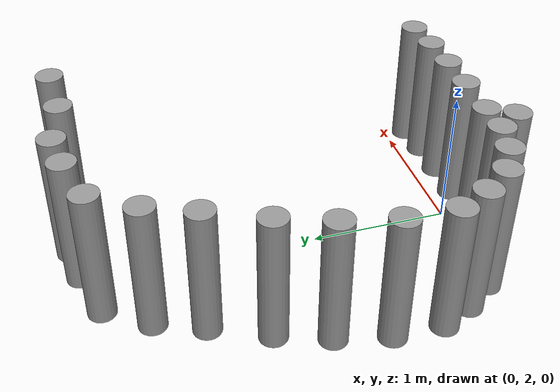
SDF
<sdf version="1.6">
 <world name="default">
  <model name="small_cylinder_0">
   <link name="link">
    <inertial>
     <mass>1</mass>
     <inertia><ixx>0.145833</ixx><ixy>0</ixy><ixz>0</ixz><iyy>0.145833</iyy><iyz>0</iyz><izz>0.125</izz></inertia>
    </inertial>
    <visual name="visual">
     <geometry><cylinder><radius>0.1</radius><length>1</length></cylinder></geometry>
     <material>
      <script><name>Gazebo/Grey</name><uri>file://media/materials/scripts/gazebo.material</uri></script>
      <ambient>0.3 0.3 0.3 1</ambient>
      <diffuse>0.7 0.7 0.7 1</diffuse>
      <specular>0.01 0.01 0.01 1</specular>
      <emissive>0 0 0 1</emissive>
      <shader type="vertex"><normal_map>__default__</normal_map></shader>
     </material>
    </visual>
    <collision name="collision">
     <geometry><cylinder><radius>0.1</radius><length>1</length></cylinder></geometry>
     <surface>
      <friction>
       <ode><mu>1</mu><mu2>1</mu2><fdir1>0 0 0</fdir1><slip1>0</slip1><slip2>0</slip2></ode>
       <torsional>
        <coefficient>1</coefficient>
        <patch_radius>0</patch_radius>
        <surface_radius>0</surface_radius>
        <use_patch_radius>1</use_patch_radius>
        <ode><slip>0</slip></ode>
       </torsional>
      </friction>
      <bounce><restitution_coefficient>0</restitution_coefficient><threshold>1e+06</threshold></bounce>
      <contact>
       <collide_without_contact>0</collide_without_contact>
       <collide_without_contact_bitmask>1</collide_without_contact_bitmask>
       <collide_bitmask>1</collide_bitmask>
       <ode>
        <soft_cfm>0</soft_cfm>
        <soft_erp>0.2</soft_erp>
        <kp>1e+13</kp>
        <kd>1</kd>
        <max_vel>0.01</max_vel>
        <min_depth>0</min_depth>
       </ode>
       <bullet>
        <split_impulse>1</split_impulse>
        <split_impulse_penetration_threshold>-0.01</split_impulse_penetration_threshold>
        <soft_cfm>0</soft_cfm>
        <soft_erp>0.2</soft_erp>
        <kp>1e+13</kp>
        <kd>1</kd>
       </bullet>
      </contact>
     </surface>
    </collision>
   </link>
   <static>1</static>
   <pose>0.821332 1.81475 0.499121 0 6e-06 -0.010888</pose>
  </model>
  <model name="small_cylinder_0_clone_19">
   <link name="link">
    <inertial>
     <mass>1</mass>
     <inertia><ixx>0.145833</ixx><ixy>0</ixy><ixz>0</ixz><iyy>0.145833</iyy><iyz>0</iyz><izz>0.125</izz></inertia>
    </inertial>
    <visual name="visual">
     <geometry><cylinder><radius>0.1</radius><length>1</length></cylinder></geometry>
     <material>
      <script><name>Gazebo/Grey</name><uri>file://media/materials/scripts/gazebo.material</uri></script>
      <ambient>0.3 0.3 0.3 1</ambient>
      <diffuse>0.7 0.7 0.7 1</diffuse>
      <specular>0.01 0.01 0.01 1</specular>
      <emissive>0 0 0 1</emissive>
      <shader type="vertex"><normal_map>__default__</normal_map></shader>
     </material>
    </visual>
    <collision name="collision">
     <geometry><cylinder><radius>0.1</radius><length>1</length></cylinder></geometry>
     <surface>
      <friction>
       <ode><mu>1</mu><mu2>1</mu2><fdir1>0 0 0</fdir1><slip1>0</slip1><slip2>0</slip2></ode>
       <torsional>
        <coefficient>1</coefficient>
        <patch_radius>0</patch_radius>
        <surface_radius>0</surface_radius>
        <use_patch_radius>1</use_patch_radius>
        <ode><slip>0</slip></ode>
       </torsional>
      </friction>
      <bounce><restitution_coefficient>0</restitution_coefficient><threshold>1e+06</threshold></bounce>
      <contact>
       <collide_without_contact>0</collide_without_contact>
       <collide_without_contact_bitmask>1</collide_without_contact_bitmask>
       <collide_bitmask>1</collide_bitmask>
       <ode>
        <soft_cfm>0</soft_cfm>
        <soft_erp>0.2</soft_erp>
        <kp>1e+13</kp>
        <kd>1</kd>
        <max_vel>0.01</max_vel>
        <min_depth>0</min_depth>
       </ode>
       <bullet>
        <split_impulse>1</split_impulse>
        <split_impulse_penetration_threshold>-0.01</split_impulse_penetration_threshold>
        <soft_cfm>0</soft_cfm>
        <soft_erp>0.2</soft_erp>
        <kp>1e+13</kp>
        <kd>1</kd>
       </bullet>
      </contact>
     </surface>
    </collision>
   </link>
   <static>1</static>
   <pose>-0.784231 2.03076 0.499121 0 6e-06 -0.010826</pose>
  </model>
  <model name="small_cylinder_0_clone_20">
   <link name="link">
    <inertial>
     <mass>1</mass>
     <inertia><ixx>0.145833</ixx><ixy>0</ixy><ixz>0</ixz><iyy>0.145833</iyy><iyz>0</iyz><izz>0.125</izz></inertia>
    </inertial>
    <visual name="visual">
     <geometry><cylinder><radius>0.1</radius><length>1</length></cylinder></geometry>
     <material>
      <script><name>Gazebo/Grey</name><uri>file://media/materials/scripts/gazebo.material</uri></script>
      <ambient>0.3 0.3 0.3 1</ambient>
      <diffuse>0.7 0.7 0.7 1</diffuse>
      <specular>0.01 0.01 0.01 1</specular>
      <emissive>0 0 0 1</emissive>
      <shader type="vertex"><normal_map>__default__</normal_map></shader>
     </material>
    </visual>
    <collision name="collision">
     <geometry><cylinder><radius>0.1</radius><length>1</length></cylinder></geometry>
     <surface>
      <friction>
       <ode><mu>1</mu><mu2>1</mu2><fdir1>0 0 0</fdir1><slip1>0</slip1><slip2>0</slip2></ode>
       <torsional>
        <coefficient>1</coefficient>
        <patch_radius>0</patch_radius>
        <surface_radius>0</surface_radius>
        <use_patch_radius>1</use_patch_radius>
        <ode><slip>0</slip></ode>
       </torsional>
      </friction>
      <bounce><restitution_coefficient>0</restitution_coefficient><threshold>1e+06</threshold></bounce>
      <contact>
       <collide_without_contact>0</collide_without_contact>
       <collide_without_contact_bitmask>1</collide_without_contact_bitmask>
       <collide_bitmask>1</collide_bitmask>
       <ode>
        <soft_cfm>0</soft_cfm>
        <soft_erp>0.2</soft_erp>
        <kp>1e+13</kp>
        <kd>1</kd>
        <max_vel>0.01</max_vel>
        <min_depth>0</min_depth>
       </ode>
       <bullet>
        <split_impulse>1</split_impulse>
        <split_impulse_penetration_threshold>-0.01</split_impulse_penetration_threshold>
        <soft_cfm>0</soft_cfm>
        <soft_erp>0.2</soft_erp>
        <kp>1e+13</kp>
        <kd>1</kd>
       </bullet>
      </contact>
     </surface>
    </collision>
   </link>
   <static>1</static>
   <pose>-0.93736 2.24189 0.499121 0 6e-06 -0.010825</pose>
  </model>
  <model name="small_cylinder_0_clone_21">
   <link name="link">
    <inertial>
     <mass>1</mass>
     <inertia><ixx>0.145833</ixx><ixy>0</ixy><ixz>0</ixz><iyy>0.145833</iyy><iyz>0</iyz><izz>0.125</izz></inertia>
    </inertial>
    <visual name="visual">
     <geometry><cylinder><radius>0.1</radius><length>1</length></cylinder></geometry>
     <material>
      <script><name>Gazebo/Grey</name><uri>file://media/materials/scripts/gazebo.material</uri></script>
      <ambient>0.3 0.3 0.3 1</ambient>
      <diffuse>0.7 0.7 0.7 1</diffuse>
      <specular>0.01 0.01 0.01 1</specular>
      <emissive>0 0 0 1</emissive>
      <shader type="vertex"><normal_map>__default__</normal_map></shader>
     </material>
    </visual>
    <collision name="collision">
     <geometry><cylinder><radius>0.1</radius><length>1</length></cylinder></geometry>
     <surface>
      <friction>
       <ode><mu>1</mu><mu2>1</mu2><fdir1>0 0 0</fdir1><slip1>0</slip1><slip2>0</slip2></ode>
       <torsional>
        <coefficient>1</coefficient>
        <patch_radius>0</patch_radius>
        <surface_radius>0</surface_radius>
        <use_patch_radius>1</use_patch_radius>
        <ode><slip>0</slip></ode>
       </torsional>
      </friction>
      <bounce><restitution_coefficient>0</restitution_coefficient><threshold>1e+06</threshold></bounce>
      <contact>
       <collide_without_contact>0</collide_without_contact>
       <collide_without_contact_bitmask>1</collide_without_contact_bitmask>
       <collide_bitmask>1</collide_bitmask>
       <ode>
        <soft_cfm>0</soft_cfm>
        <soft_erp>0.2</soft_erp>
        <kp>1e+13</kp>
        <kd>1</kd>
        <max_vel>0.01</max_vel>
        <min_depth>0</min_depth>
       </ode>
       <bullet>
        <split_impulse>1</split_impulse>
        <split_impulse_penetration_threshold>-0.01</split_impulse_penetration_threshold>
        <soft_cfm>0</soft_cfm>
        <soft_erp>0.2</soft_erp>
        <kp>1e+13</kp>
        <kd>1</kd>
       </bullet>
      </contact>
     </surface>
    </collision>
   </link>
   <static>1</static>
   <pose>-1.0478 2.46962 0.499121 0 6e-06 -0.01085</pose>
  </model>
  <model name="small_cylinder_0_clone_22">
   <link name="link">
    <inertial>
     <mass>1</mass>
     <inertia><ixx>0.145833</ixx><ixy>0</ixy><ixz>0</ixz><iyy>0.145833</iyy><iyz>0</iyz><izz>0.125</izz></inertia>
    </inertial>
    <visual name="visual">
     <geometry><cylinder><radius>0.1</radius><length>1</length></cylinder></geometry>
     <material>
      <script><name>Gazebo/Grey</name><uri>file://media/materials/scripts/gazebo.material</uri></script>
      <ambient>0.3 0.3 0.3 1</ambient>
      <diffuse>0.7 0.7 0.7 1</diffuse>
      <specular>0.01 0.01 0.01 1</specular>
      <emissive>0 0 0 1</emissive>
      <shader type="vertex"><normal_map>__default__</normal_map></shader>
     </material>
    </visual>
    <collision name="collision">
     <geometry><cylinder><radius>0.1</radius><length>1</length></cylinder></geometry>
     <surface>
      <friction>
       <ode><mu>1</mu><mu2>1</mu2><fdir1>0 0 0</fdir1><slip1>0</slip1><slip2>0</slip2></ode>
       <torsional>
        <coefficient>1</coefficient>
        <patch_radius>0</patch_radius>
        <surface_radius>0</surface_radius>
        <use_patch_radius>1</use_patch_radius>
        <ode><slip>0</slip></ode>
       </torsional>
      </friction>
      <bounce><restitution_coefficient>0</restitution_coefficient><threshold>1e+06</threshold></bounce>
      <contact>
       <collide_without_contact>0</collide_without_contact>
       <collide_without_contact_bitmask>1</collide_without_contact_bitmask>
       <collide_bitmask>1</collide_bitmask>
       <ode>
        <soft_cfm>0</soft_cfm>
        <soft_erp>0.2</soft_erp>
        <kp>1e+13</kp>
        <kd>1</kd>
        <max_vel>0.01</max_vel>
        <min_depth>0</min_depth>
       </ode>
       <bullet>
        <split_impulse>1</split_impulse>
        <split_impulse_penetration_threshold>-0.01</split_impulse_penetration_threshold>
        <soft_cfm>0</soft_cfm>
        <soft_erp>0.2</soft_erp>
        <kp>1e+13</kp>
        <kd>1</kd>
       </bullet>
      </contact>
     </surface>
    </collision>
   </link>
   <static>1</static>
   <pose>-0.283826 4.5809 0.499121 0 6e-06 -0.010595</pose>
  </model>
  <model name="small_cylinder_0_clone_23">
   <link name="link">
    <inertial>
     <mass>1</mass>
     <inertia><ixx>0.145833</ixx><ixy>0</ixy><ixz>0</ixz><iyy>0.145833</iyy><iyz>0</iyz><izz>0.125</izz></inertia>
    </inertial>
    <visual name="visual">
     <geometry><cylinder><radius>0.1</radius><length>1</length></cylinder></geometry>
     <material>
      <script><name>Gazebo/Grey</name><uri>file://media/materials/scripts/gazebo.material</uri></script>
      <ambient>0.3 0.3 0.3 1</ambient>
      <diffuse>0.7 0.7 0.7 1</diffuse>
      <specular>0.01 0.01 0.01 1</specular>
      <emissive>0 0 0 1</emissive>
      <shader type="vertex"><normal_map>__default__</normal_map></shader>
     </material>
    </visual>
    <collision name="collision">
     <geometry><cylinder><radius>0.1</radius><length>1</length></cylinder></geometry>
     <surface>
      <friction>
       <ode><mu>1</mu><mu2>1</mu2><fdir1>0 0 0</fdir1><slip1>0</slip1><slip2>0</slip2></ode>
       <torsional>
        <coefficient>1</coefficient>
        <patch_radius>0</patch_radius>
        <surface_radius>0</surface_radius>
        <use_patch_radius>1</use_patch_radius>
        <ode><slip>0</slip></ode>
       </torsional>
      </friction>
      <bounce><restitution_coefficient>0</restitution_coefficient><threshold>1e+06</threshold></bounce>
      <contact>
       <collide_without_contact>0</collide_without_contact>
       <collide_without_contact_bitmask>1</collide_without_contact_bitmask>
       <collide_bitmask>1</collide_bitmask>
       <ode>
        <soft_cfm>0</soft_cfm>
        <soft_erp>0.2</soft_erp>
        <kp>1e+13</kp>
        <kd>1</kd>
        <max_vel>0.01</max_vel>
        <min_depth>0</min_depth>
       </ode>
       <bullet>
        <split_impulse>1</split_impulse>
        <split_impulse_penetration_threshold>-0.01</split_impulse_penetration_threshold>
        <soft_cfm>0</soft_cfm>
        <soft_erp>0.2</soft_erp>
        <kp>1e+13</kp>
        <kd>1</kd>
       </bullet>
      </contact>
     </surface>
    </collision>
   </link>
   <static>1</static>
   <pose>-1.0387 2.8273 0.499121 0 6e-06 -0.010854</pose>
  </model>
  <model name="small_cylinder_0_clone_24">
   <link name="link">
    <inertial>
     <mass>1</mass>
     <inertia><ixx>0.145833</ixx><ixy>0</ixy><ixz>0</ixz><iyy>0.145833</iyy><iyz>0</iyz><izz>0.125</izz></inertia>
    </inertial>
    <visual name="visual">
     <geometry><cylinder><radius>0.1</radius><length>1</length></cylinder></geometry>
     <material>
      <script><name>Gazebo/Grey</name><uri>file://media/materials/scripts/gazebo.material</uri></script>
      <ambient>0.3 0.3 0.3 1</ambient>
      <diffuse>0.7 0.7 0.7 1</diffuse>
      <specular>0.01 0.01 0.01 1</specular>
      <emissive>0 0 0 1</emissive>
      <shader type="vertex"><normal_map>__default__</normal_map></shader>
     </material>
    </visual>
    <collision name="collision">
     <geometry><cylinder><radius>0.1</radius><length>1</length></cylinder></geometry>
     <surface>
      <friction>
       <ode><mu>1</mu><mu2>1</mu2><fdir1>0 0 0</fdir1><slip1>0</slip1><slip2>0</slip2></ode>
       <torsional>
        <coefficient>1</coefficient>
        <patch_radius>0</patch_radius>
        <surface_radius>0</surface_radius>
        <use_patch_radius>1</use_patch_radius>
        <ode><slip>0</slip></ode>
       </torsional>
      </friction>
      <bounce><restitution_coefficient>0</restitution_coefficient><threshold>1e+06</threshold></bounce>
      <contact>
       <collide_without_contact>0</collide_without_contact>
       <collide_without_contact_bitmask>1</collide_without_contact_bitmask>
       <collide_bitmask>1</collide_bitmask>
       <ode>
        <soft_cfm>0</soft_cfm>
        <soft_erp>0.2</soft_erp>
        <kp>1e+13</kp>
        <kd>1</kd>
        <max_vel>0.01</max_vel>
        <min_depth>0</min_depth>
       </ode>
       <bullet>
        <split_impulse>1</split_impulse>
        <split_impulse_penetration_threshold>-0.01</split_impulse_penetration_threshold>
        <soft_cfm>0</soft_cfm>
        <soft_erp>0.2</soft_erp>
        <kp>1e+13</kp>
        <kd>1</kd>
       </bullet>
      </contact>
     </surface>
    </collision>
   </link>
   <static>1</static>
   <pose>-0.946993 3.19906 0.499121 0 6e-06 -0.010902</pose>
  </model>
  <model name="small_cylinder_0_clone_25">
   <link name="link">
    <inertial>
     <mass>1</mass>
     <inertia><ixx>0.145833</ixx><ixy>0</ixy><ixz>0</ixz><iyy>0.145833</iyy><iyz>0</iyz><izz>0.125</izz></inertia>
    </inertial>
    <visual name="visual">
     <geometry><cylinder><radius>0.1</radius><length>1</length></cylinder></geometry>
     <material>
      <script><name>Gazebo/Grey</name><uri>file://media/materials/scripts/gazebo.material</uri></script>
      <ambient>0.3 0.3 0.3 1</ambient>
      <diffuse>0.7 0.7 0.7 1</diffuse>
      <specular>0.01 0.01 0.01 1</specular>
      <emissive>0 0 0 1</emissive>
      <shader type="vertex"><normal_map>__default__</normal_map></shader>
     </material>
    </visual>
    <collision name="collision">
     <geometry><cylinder><radius>0.1</radius><length>1</length></cylinder></geometry>
     <surface>
      <friction>
       <ode><mu>1</mu><mu2>1</mu2><fdir1>0 0 0</fdir1><slip1>0</slip1><slip2>0</slip2></ode>
       <torsional>
        <coefficient>1</coefficient>
        <patch_radius>0</patch_radius>
        <surface_radius>0</surface_radius>
        <use_patch_radius>1</use_patch_radius>
        <ode><slip>0</slip></ode>
       </torsional>
      </friction>
      <bounce><restitution_coefficient>0</restitution_coefficient><threshold>1e+06</threshold></bounce>
      <contact>
       <collide_without_contact>0</collide_without_contact>
       <collide_without_contact_bitmask>1</collide_without_contact_bitmask>
       <collide_bitmask>1</collide_bitmask>
       <ode>
        <soft_cfm>0</soft_cfm>
        <soft_erp>0.2</soft_erp>
        <kp>1e+13</kp>
        <kd>1</kd>
        <max_vel>0.01</max_vel>
        <min_depth>0</min_depth>
       </ode>
       <bullet>
        <split_impulse>1</split_impulse>
        <split_impulse_penetration_threshold>-0.01</split_impulse_penetration_threshold>
        <soft_cfm>0</soft_cfm>
        <soft_erp>0.2</soft_erp>
        <kp>1e+13</kp>
        <kd>1</kd>
       </bullet>
      </contact>
     </surface>
    </collision>
   </link>
   <static>1</static>
   <pose>-0.815008 3.5579 0.499121 0 6e-06 -0.010839</pose>
  </model>
  <model name="small_cylinder_0_clone_26">
   <link name="link">
    <inertial>
     <mass>1</mass>
     <inertia><ixx>0.145833</ixx><ixy>0</ixy><ixz>0</ixz><iyy>0.145833</iyy><iyz>0</iyz><izz>0.125</izz></inertia>
    </inertial>
    <visual name="visual">
     <geometry><cylinder><radius>0.1</radius><length>1</length></cylinder></geometry>
     <material>
      <script><name>Gazebo/Grey</name><uri>file://media/materials/scripts/gazebo.material</uri></script>
      <ambient>0.3 0.3 0.3 1</ambient>
      <diffuse>0.7 0.7 0.7 1</diffuse>
      <specular>0.01 0.01 0.01 1</specular>
      <emissive>0 0 0 1</emissive>
      <shader type="vertex"><normal_map>__default__</normal_map></shader>
     </material>
    </visual>
    <collision name="collision">
     <geometry><cylinder><radius>0.1</radius><length>1</length></cylinder></geometry>
     <surface>
      <friction>
       <ode><mu>1</mu><mu2>1</mu2><fdir1>0 0 0</fdir1><slip1>0</slip1><slip2>0</slip2></ode>
       <torsional>
        <coefficient>1</coefficient>
        <patch_radius>0</patch_radius>
        <surface_radius>0</surface_radius>
        <use_patch_radius>1</use_patch_radius>
        <ode><slip>0</slip></ode>
       </torsional>
      </friction>
      <bounce><restitution_coefficient>0</restitution_coefficient><threshold>1e+06</threshold></bounce>
      <contact>
       <collide_without_contact>0</collide_without_contact>
       <collide_without_contact_bitmask>1</collide_without_contact_bitmask>
       <collide_bitmask>1</collide_bitmask>
       <ode>
        <soft_cfm>0</soft_cfm>
        <soft_erp>0.2</soft_erp>
        <kp>1e+13</kp>
        <kd>1</kd>
        <max_vel>0.01</max_vel>
        <min_depth>0</min_depth>
       </ode>
       <bullet>
        <split_impulse>1</split_impulse>
        <split_impulse_penetration_threshold>-0.01</split_impulse_penetration_threshold>
        <soft_cfm>0</soft_cfm>
        <soft_erp>0.2</soft_erp>
        <kp>1e+13</kp>
        <kd>1</kd>
       </bullet>
      </contact>
     </surface>
    </collision>
   </link>
   <static>1</static>
   <pose>0.361109 4.71101 0.499121 0 6e-06 -0.019556</pose>
  </model>
  <model name="small_cylinder_0_clone_27">
   <link name="link">
    <inertial>
     <mass>1</mass>
     <inertia><ixx>0.145833</ixx><ixy>0</ixy><ixz>0</ixz><iyy>0.145833</iyy><iyz>0</iyz><izz>0.125</izz></inertia>
    </inertial>
    <visual name="visual">
     <geometry><cylinder><radius>0.1</radius><length>1</length></cylinder></geometry>
     <material>
      <script><name>Gazebo/Grey</name><uri>file://media/materials/scripts/gazebo.material</uri></script>
      <ambient>0.3 0.3 0.3 1</ambient>
      <diffuse>0.7 0.7 0.7 1</diffuse>
      <specular>0.01 0.01 0.01 1</specular>
      <emissive>0 0 0 1</emissive>
      <shader type="vertex"><normal_map>__default__</normal_map></shader>
     </material>
    </visual>
    <collision name="collision">
     <geometry><cylinder><radius>0.1</radius><length>1</length></cylinder></geometry>
     <surface>
      <friction>
       <ode><mu>1</mu><mu2>1</mu2><fdir1>0 0 0</fdir1><slip1>0</slip1><slip2>0</slip2></ode>
       <torsional>
        <coefficient>1</coefficient>
        <patch_radius>0</patch_radius>
        <surface_radius>0</surface_radius>
        <use_patch_radius>1</use_patch_radius>
        <ode><slip>0</slip></ode>
       </torsional>
      </friction>
      <bounce><restitution_coefficient>0</restitution_coefficient><threshold>1e+06</threshold></bounce>
      <contact>
       <collide_without_contact>0</collide_without_contact>
       <collide_without_contact_bitmask>1</collide_without_contact_bitmask>
       <collide_bitmask>1</collide_bitmask>
       <ode>
        <soft_cfm>0</soft_cfm>
        <soft_erp>0.2</soft_erp>
        <kp>1e+13</kp>
        <kd>1</kd>
        <max_vel>0.01</max_vel>
        <min_depth>0</min_depth>
       </ode>
       <bullet>
        <split_impulse>1</split_impulse>
        <split_impulse_penetration_threshold>-0.01</split_impulse_penetration_threshold>
        <soft_cfm>0</soft_cfm>
        <soft_erp>0.2</soft_erp>
        <kp>1e+13</kp>
        <kd>1</kd>
       </bullet>
      </contact>
     </surface>
    </collision>
   </link>
   <static>1</static>
   <pose>-0.631874 3.94904 0.499121 0 6e-06 -0.010858</pose>
  </model>
  <model name="small_cylinder_0_clone_28">
   <link name="link">
    <inertial>
     <mass>1</mass>
     <inertia><ixx>0.145833</ixx><ixy>0</ixy><ixz>0</ixz><iyy>0.145833</iyy><iyz>0</iyz><izz>0.125</izz></inertia>
    </inertial>
    <visual name="visual">
     <geometry><cylinder><radius>0.1</radius><length>1</length></cylinder></geometry>
     <material>
      <script><name>Gazebo/Grey</name><uri>file://media/materials/scripts/gazebo.material</uri></script>
      <ambient>0.3 0.3 0.3 1</ambient>
      <diffuse>0.7 0.7 0.7 1</diffuse>
      <specular>0.01 0.01 0.01 1</specular>
      <emissive>0 0 0 1</emissive>
      <shader type="vertex"><normal_map>__default__</normal_map></shader>
     </material>
    </visual>
    <collision name="collision">
     <geometry><cylinder><radius>0.1</radius><length>1</length></cylinder></geometry>
     <surface>
      <friction>
       <ode><mu>1</mu><mu2>1</mu2><fdir1>0 0 0</fdir1><slip1>0</slip1><slip2>0</slip2></ode>
       <torsional>
        <coefficient>1</coefficient>
        <patch_radius>0</patch_radius>
        <surface_radius>0</surface_radius>
        <use_patch_radius>1</use_patch_radius>
        <ode><slip>0</slip></ode>
       </torsional>
      </friction>
      <bounce><restitution_coefficient>0</restitution_coefficient><threshold>1e+06</threshold></bounce>
      <contact>
       <collide_without_contact>0</collide_without_contact>
       <collide_without_contact_bitmask>1</collide_without_contact_bitmask>
       <collide_bitmask>1</collide_bitmask>
       <ode>
        <soft_cfm>0</soft_cfm>
        <soft_erp>0.2</soft_erp>
        <kp>1e+13</kp>
        <kd>1</kd>
        <max_vel>0.01</max_vel>
        <min_depth>0</min_depth>
       </ode>
       <bullet>
        <split_impulse>1</split_impulse>
        <split_impulse_penetration_threshold>-0.01</split_impulse_penetration_threshold>
        <soft_cfm>0</soft_cfm>
        <soft_erp>0.2</soft_erp>
        <kp>1e+13</kp>
        <kd>1</kd>
       </bullet>
      </contact>
     </surface>
    </collision>
   </link>
   <static>1</static>
   <pose>-0.492675 4.28058 0.499121 0 -6e-06 -0.004304</pose>
  </model>
  <model name="small_cylinder_0_clone_29">
   <link name="link">
    <inertial>
     <mass>1</mass>
     <inertia><ixx>0.145833</ixx><ixy>0</ixy><ixz>0</ixz><iyy>0.145833</iyy><iyz>0</iyz><izz>0.125</izz></inertia>
    </inertial>
    <visual name="visual">
     <geometry><cylinder><radius>0.1</radius><length>1</length></cylinder></geometry>
     <material>
      <script><name>Gazebo/Grey</name><uri>file://media/materials/scripts/gazebo.material</uri></script>
      <ambient>0.3 0.3 0.3 1</ambient>
      <diffuse>0.7 0.7 0.7 1</diffuse>
      <specular>0.01 0.01 0.01 1</specular>
      <emissive>0 0 0 1</emissive>
      <shader type="vertex"><normal_map>__default__</normal_map></shader>
     </material>
    </visual>
    <collision name="collision">
     <geometry><cylinder><radius>0.1</radius><length>1</length></cylinder></geometry>
     <surface>
      <friction>
       <ode><mu>1</mu><mu2>1</mu2><fdir1>0 0 0</fdir1><slip1>0</slip1><slip2>0</slip2></ode>
       <torsional>
        <coefficient>1</coefficient>
        <patch_radius>0</patch_radius>
        <surface_radius>0</surface_radius>
        <use_patch_radius>1</use_patch_radius>
        <ode><slip>0</slip></ode>
       </torsional>
      </friction>
      <bounce><restitution_coefficient>0</restitution_coefficient><threshold>1e+06</threshold></bounce>
      <contact>
       <collide_without_contact>0</collide_without_contact>
       <collide_without_contact_bitmask>1</collide_without_contact_bitmask>
       <collide_bitmask>1</collide_bitmask>
       <ode>
        <soft_cfm>0</soft_cfm>
        <soft_erp>0.2</soft_erp>
        <kp>1e+13</kp>
        <kd>1</kd>
        <max_vel>0.01</max_vel>
        <min_depth>0</min_depth>
       </ode>
       <bullet>
        <split_impulse>1</split_impulse>
        <split_impulse_penetration_threshold>-0.01</split_impulse_penetration_threshold>
        <soft_cfm>0</soft_cfm>
        <soft_erp>0.2</soft_erp>
        <kp>1e+13</kp>
        <kd>1</kd>
       </bullet>
      </contact>
     </surface>
    </collision>
   </link>
   <static>1</static>
   <pose>0.081453 4.67514 0.499121 -1e-06 -6e-06 0.081107</pose>
  </model>
  <model name="small_cylinder_0_clone_30">
   <link name="link">
    <inertial>
     <mass>1</mass>
     <inertia><ixx>0.145833</ixx><ixy>0</ixy><ixz>0</ixz><iyy>0.145833</iyy><iyz>0</iyz><izz>0.125</izz></inertia>
    </inertial>
    <visual name="visual">
     <geometry><cylinder><radius>0.1</radius><length>1</length></cylinder></geometry>
     <material>
      <script><name>Gazebo/Grey</name><uri>file://media/materials/scripts/gazebo.material</uri></script>
      <ambient>0.3 0.3 0.3 1</ambient>
      <diffuse>0.7 0.7 0.7 1</diffuse>
      <specular>0.01 0.01 0.01 1</specular>
      <emissive>0 0 0 1</emissive>
      <shader type="vertex"><normal_map>__default__</normal_map></shader>
     </material>
    </visual>
    <collision name="collision">
     <geometry><cylinder><radius>0.1</radius><length>1</length></cylinder></geometry>
     <surface>
      <friction>
       <ode><mu>1</mu><mu2>1</mu2><fdir1>0 0 0</fdir1><slip1>0</slip1><slip2>0</slip2></ode>
       <torsional>
        <coefficient>1</coefficient>
        <patch_radius>0</patch_radius>
        <surface_radius>0</surface_radius>
        <use_patch_radius>1</use_patch_radius>
        <ode><slip>0</slip></ode>
       </torsional>
      </friction>
      <bounce><restitution_coefficient>0</restitution_coefficient><threshold>1e+06</threshold></bounce>
      <contact>
       <collide_without_contact>0</collide_without_contact>
       <collide_without_contact_bitmask>1</collide_without_contact_bitmask>
       <collide_bitmask>1</collide_bitmask>
       <ode>
        <soft_cfm>0</soft_cfm>
        <soft_erp>0.2</soft_erp>
        <kp>1e+13</kp>
        <kd>1</kd>
        <max_vel>0.01</max_vel>
        <min_depth>0</min_depth>
       </ode>
       <bullet>
        <split_impulse>1</split_impulse>
        <split_impulse_penetration_threshold>-0.01</split_impulse_penetration_threshold>
        <soft_cfm>0</soft_cfm>
        <soft_erp>0.2</soft_erp>
        <kp>1e+13</kp>
        <kd>1</kd>
       </bullet>
      </contact>
     </surface>
    </collision>
   </link>
   <static>1</static>
   <pose>1.1615 4.64777 0.499121 0 6e-06 -0.010811</pose>
  </model>
  <model name="small_cylinder_0_clone_31">
   <link name="link">
    <inertial>
     <mass>1</mass>
     <inertia><ixx>0.145833</ixx><ixy>0</ixy><ixz>0</ixz><iyy>0.145833</iyy><iyz>0</iyz><izz>0.125</izz></inertia>
    </inertial>
    <visual name="visual">
     <geometry><cylinder><radius>0.1</radius><length>1</length></cylinder></geometry>
     <material>
      <script><name>Gazebo/Grey</name><uri>file://media/materials/scripts/gazebo.material</uri></script>
      <ambient>0.3 0.3 0.3 1</ambient>
      <diffuse>0.7 0.7 0.7 1</diffuse>
      <specular>0.01 0.01 0.01 1</specular>
      <emissive>0 0 0 1</emissive>
      <shader type="vertex"><normal_map>__default__</normal_map></shader>
     </material>
    </visual>
    <collision name="collision">
     <geometry><cylinder><radius>0.1</radius><length>1</length></cylinder></geometry>
     <surface>
      <friction>
       <ode><mu>1</mu><mu2>1</mu2><fdir1>0 0 0</fdir1><slip1>0</slip1><slip2>0</slip2></ode>
       <torsional>
        <coefficient>1</coefficient>
        <patch_radius>0</patch_radius>
        <surface_radius>0</surface_radius>
        <use_patch_radius>1</use_patch_radius>
        <ode><slip>0</slip></ode>
       </torsional>
      </friction>
      <bounce><restitution_coefficient>0</restitution_coefficient><threshold>1e+06</threshold></bounce>
      <contact>
       <collide_without_contact>0</collide_without_contact>
       <collide_without_contact_bitmask>1</collide_without_contact_bitmask>
       <collide_bitmask>1</collide_bitmask>
       <ode>
        <soft_cfm>0</soft_cfm>
        <soft_erp>0.2</soft_erp>
        <kp>1e+13</kp>
        <kd>1</kd>
        <max_vel>0.01</max_vel>
        <min_depth>0</min_depth>
       </ode>
       <bullet>
        <split_impulse>1</split_impulse>
        <split_impulse_penetration_threshold>-0.01</split_impulse_penetration_threshold>
        <soft_cfm>0</soft_cfm>
        <soft_erp>0.2</soft_erp>
        <kp>1e+13</kp>
        <kd>1</kd>
       </bullet>
      </contact>
     </surface>
    </collision>
   </link>
   <static>1</static>
   <pose>0.741825 4.62907 0.499121 0 6e-06 -0.010852</pose>
  </model>
  <model name="small_cylinder_0_clone_43">
   <link name="link">
    <inertial>
     <mass>1</mass>
     <inertia><ixx>0.145833</ixx><ixy>0</ixy><ixz>0</ixz><iyy>0.145833</iyy><iyz>0</iyz><izz>0.125</izz></inertia>
    </inertial>
    <visual name="visual">
     <geometry><cylinder><radius>0.1</radius><length>1</length></cylinder></geometry>
     <material>
      <script><name>Gazebo/Grey</name><uri>file://media/materials/scripts/gazebo.material</uri></script>
      <ambient>0.3 0.3 0.3 1</ambient>
      <diffuse>0.7 0.7 0.7 1</diffuse>
      <specular>0.01 0.01 0.01 1</specular>
      <emissive>0 0 0 1</emissive>
      <shader type="vertex"><normal_map>__default__</normal_map></shader>
     </material>
    </visual>
    <collision name="collision">
     <geometry><cylinder><radius>0.1</radius><length>1</length></cylinder></geometry>
     <surface>
      <friction>
       <ode><mu>1</mu><mu2>1</mu2><fdir1>0 0 0</fdir1><slip1>0</slip1><slip2>0</slip2></ode>
       <torsional>
        <coefficient>1</coefficient>
        <patch_radius>0</patch_radius>
        <surface_radius>0</surface_radius>
        <use_patch_radius>1</use_patch_radius>
        <ode><slip>0</slip></ode>
       </torsional>
      </friction>
      <bounce><restitution_coefficient>0</restitution_coefficient><threshold>1e+06</threshold></bounce>
      <contact>
       <collide_without_contact>0</collide_without_contact>
       <collide_without_contact_bitmask>1</collide_without_contact_bitmask>
       <collide_bitmask>1</collide_bitmask>
       <ode>
        <soft_cfm>0</soft_cfm>
        <soft_erp>0.2</soft_erp>
        <kp>1e+13</kp>
        <kd>1</kd>
        <max_vel>0.01</max_vel>
        <min_depth>0</min_depth>
       </ode>
       <bullet>
        <split_impulse>1</split_impulse>
        <split_impulse_penetration_threshold>-0.01</split_impulse_penetration_threshold>
        <soft_cfm>0</soft_cfm>
        <soft_erp>0.2</soft_erp>
        <kp>1e+13</kp>
        <kd>1</kd>
       </bullet>
      </contact>
     </surface>
    </collision>
   </link>
   <static>1</static>
   <pose>-0.578217 1.90384 0.499121 0 6e-06 -0.010877</pose>
  </model>
  <model name="small_cylinder_0_clone_44">
   <link name="link">
    <inertial>
     <mass>1</mass>
     <inertia><ixx>0.145833</ixx><ixy>0</ixy><ixz>0</ixz><iyy>0.145833</iyy><iyz>0</iyz><izz>0.125</izz></inertia>
    </inertial>
    <visual name="visual">
     <geometry><cylinder><radius>0.1</radius><length>1</length></cylinder></geometry>
     <material>
      <script><name>Gazebo/Grey</name><uri>file://media/materials/scripts/gazebo.material</uri></script>
      <ambient>0.3 0.3 0.3 1</ambient>
      <diffuse>0.7 0.7 0.7 1</diffuse>
      <specular>0.01 0.01 0.01 1</specular>
      <emissive>0 0 0 1</emissive>
      <shader type="vertex"><normal_map>__default__</normal_map></shader>
     </material>
    </visual>
    <collision name="collision">
     <geometry><cylinder><radius>0.1</radius><length>1</length></cylinder></geometry>
     <surface>
      <friction>
       <ode><mu>1</mu><mu2>1</mu2><fdir1>0 0 0</fdir1><slip1>0</slip1><slip2>0</slip2></ode>
       <torsional>
        <coefficient>1</coefficient>
        <patch_radius>0</patch_radius>
        <surface_radius>0</surface_radius>
        <use_patch_radius>1</use_patch_radius>
        <ode><slip>0</slip></ode>
       </torsional>
      </friction>
      <bounce><restitution_coefficient>0</restitution_coefficient><threshold>1e+06</threshold></bounce>
      <contact>
       <collide_without_contact>0</collide_without_contact>
       <collide_without_contact_bitmask>1</collide_without_contact_bitmask>
       <collide_bitmask>1</collide_bitmask>
       <ode>
        <soft_cfm>0</soft_cfm>
        <soft_erp>0.2</soft_erp>
        <kp>1e+13</kp>
        <kd>1</kd>
        <max_vel>0.01</max_vel>
        <min_depth>0</min_depth>
       </ode>
       <bullet>
        <split_impulse>1</split_impulse>
        <split_impulse_penetration_threshold>-0.01</split_impulse_penetration_threshold>
        <soft_cfm>0</soft_cfm>
        <soft_erp>0.2</soft_erp>
        <kp>1e+13</kp>
        <kd>1</kd>
       </bullet>
      </contact>
     </surface>
    </collision>
   </link>
   <static>1</static>
   <pose>-0.352718 1.84074 0.499121 0 6e-06 -0.010837</pose>
  </model>
  <model name="small_cylinder_0_clone_45">
   <link name="link">
    <inertial>
     <mass>1</mass>
     <inertia><ixx>0.145833</ixx><ixy>0</ixy><ixz>0</ixz><iyy>0.145833</iyy><iyz>0</iyz><izz>0.125</izz></inertia>
    </inertial>
    <visual name="visual">
     <geometry><cylinder><radius>0.1</radius><length>1</length></cylinder></geometry>
     <material>
      <script><name>Gazebo/Grey</name><uri>file://media/materials/scripts/gazebo.material</uri></script>
      <ambient>0.3 0.3 0.3 1</ambient>
      <diffuse>0.7 0.7 0.7 1</diffuse>
      <specular>0.01 0.01 0.01 1</specular>
      <emissive>0 0 0 1</emissive>
      <shader type="vertex"><normal_map>__default__</normal_map></shader>
     </material>
    </visual>
    <collision name="collision">
     <geometry><cylinder><radius>0.1</radius><length>1</length></cylinder></geometry>
     <surface>
      <friction>
       <ode><mu>1</mu><mu2>1</mu2><fdir1>0 0 0</fdir1><slip1>0</slip1><slip2>0</slip2></ode>
       <torsional>
        <coefficient>1</coefficient>
        <patch_radius>0</patch_radius>
        <surface_radius>0</surface_radius>
        <use_patch_radius>1</use_patch_radius>
        <ode><slip>0</slip></ode>
       </torsional>
      </friction>
      <bounce><restitution_coefficient>0</restitution_coefficient><threshold>1e+06</threshold></bounce>
      <contact>
       <collide_without_contact>0</collide_without_contact>
       <collide_without_contact_bitmask>1</collide_without_contact_bitmask>
       <collide_bitmask>1</collide_bitmask>
       <ode>
        <soft_cfm>0</soft_cfm>
        <soft_erp>0.2</soft_erp>
        <kp>1e+13</kp>
        <kd>1</kd>
        <max_vel>0.01</max_vel>
        <min_depth>0</min_depth>
       </ode>
       <bullet>
        <split_impulse>1</split_impulse>
        <split_impulse_penetration_threshold>-0.01</split_impulse_penetration_threshold>
        <soft_cfm>0</soft_cfm>
        <soft_erp>0.2</soft_erp>
        <kp>1e+13</kp>
        <kd>1</kd>
       </bullet>
      </contact>
     </surface>
    </collision>
   </link>
   <static>1</static>
   <pose>-0.121939 1.83538 0.499121 0 6e-06 -0.010851</pose>
  </model>
  <model name="small_cylinder_0_clone_46">
   <link name="link">
    <inertial>
     <mass>1</mass>
     <inertia><ixx>0.145833</ixx><ixy>0</ixy><ixz>0</ixz><iyy>0.145833</iyy><iyz>0</iyz><izz>0.125</izz></inertia>
    </inertial>
    <visual name="visual">
     <geometry><cylinder><radius>0.1</radius><length>1</length></cylinder></geometry>
     <material>
      <script><name>Gazebo/Grey</name><uri>file://media/materials/scripts/gazebo.material</uri></script>
      <ambient>0.3 0.3 0.3 1</ambient>
      <diffuse>0.7 0.7 0.7 1</diffuse>
      <specular>0.01 0.01 0.01 1</specular>
      <emissive>0 0 0 1</emissive>
      <shader type="vertex"><normal_map>__default__</normal_map></shader>
     </material>
    </visual>
    <collision name="collision">
     <geometry><cylinder><radius>0.1</radius><length>1</length></cylinder></geometry>
     <surface>
      <friction>
       <ode><mu>1</mu><mu2>1</mu2><fdir1>0 0 0</fdir1><slip1>0</slip1><slip2>0</slip2></ode>
       <torsional>
        <coefficient>1</coefficient>
        <patch_radius>0</patch_radius>
        <surface_radius>0</surface_radius>
        <use_patch_radius>1</use_patch_radius>
        <ode><slip>0</slip></ode>
       </torsional>
      </friction>
      <bounce><restitution_coefficient>0</restitution_coefficient><threshold>1e+06</threshold></bounce>
      <contact>
       <collide_without_contact>0</collide_without_contact>
       <collide_without_contact_bitmask>1</collide_without_contact_bitmask>
       <collide_bitmask>1</collide_bitmask>
       <ode>
        <soft_cfm>0</soft_cfm>
        <soft_erp>0.2</soft_erp>
        <kp>1e+13</kp>
        <kd>1</kd>
        <max_vel>0.01</max_vel>
        <min_depth>0</min_depth>
       </ode>
       <bullet>
        <split_impulse>1</split_impulse>
        <split_impulse_penetration_threshold>-0.01</split_impulse_penetration_threshold>
        <soft_cfm>0</soft_cfm>
        <soft_erp>0.2</soft_erp>
        <kp>1e+13</kp>
        <kd>1</kd>
       </bullet>
      </contact>
     </surface>
    </collision>
   </link>
   <static>1</static>
   <pose>0.225057 1.81822 0.499121 0 6e-06 -0.01086</pose>
  </model>
  <model name="small_cylinder_0_clone_47">
   <link name="link">
    <inertial>
     <mass>1</mass>
     <inertia><ixx>0.145833</ixx><ixy>0</ixy><ixz>0</ixz><iyy>0.145833</iyy><iyz>0</iyz><izz>0.125</izz></inertia>
    </inertial>
    <visual name="visual">
     <geometry><cylinder><radius>0.1</radius><length>1</length></cylinder></geometry>
     <material>
      <script><name>Gazebo/Grey</name><uri>file://media/materials/scripts/gazebo.material</uri></script>
      <ambient>0.3 0.3 0.3 1</ambient>
      <diffuse>0.7 0.7 0.7 1</diffuse>
      <specular>0.01 0.01 0.01 1</specular>
      <emissive>0 0 0 1</emissive>
      <shader type="vertex"><normal_map>__default__</normal_map></shader>
     </material>
    </visual>
    <collision name="collision">
     <geometry><cylinder><radius>0.1</radius><length>1</length></cylinder></geometry>
     <surface>
      <friction>
       <ode><mu>1</mu><mu2>1</mu2><fdir1>0 0 0</fdir1><slip1>0</slip1><slip2>0</slip2></ode>
       <torsional>
        <coefficient>1</coefficient>
        <patch_radius>0</patch_radius>
        <surface_radius>0</surface_radius>
        <use_patch_radius>1</use_patch_radius>
        <ode><slip>0</slip></ode>
       </torsional>
      </friction>
      <bounce><restitution_coefficient>0</restitution_coefficient><threshold>1e+06</threshold></bounce>
      <contact>
       <collide_without_contact>0</collide_without_contact>
       <collide_without_contact_bitmask>1</collide_without_contact_bitmask>
       <collide_bitmask>1</collide_bitmask>
       <ode>
        <soft_cfm>0</soft_cfm>
        <soft_erp>0.2</soft_erp>
        <kp>1e+13</kp>
        <kd>1</kd>
        <max_vel>0.01</max_vel>
        <min_depth>0</min_depth>
       </ode>
       <bullet>
        <split_impulse>1</split_impulse>
        <split_impulse_penetration_threshold>-0.01</split_impulse_penetration_threshold>
        <soft_cfm>0</soft_cfm>
        <soft_erp>0.2</soft_erp>
        <kp>1e+13</kp>
        <kd>1</kd>
       </bullet>
      </contact>
     </surface>
    </collision>
   </link>
   <static>1</static>
   <pose>0.530091 1.81138 0.499121 0 6e-06 -0.010887</pose>
  </model>
  <model name="small_cylinder_0_clone_48">
   <link name="link">
    <inertial>
     <mass>1</mass>
     <inertia><ixx>0.145833</ixx><ixy>0</ixy><ixz>0</ixz><iyy>0.145833</iyy><iyz>0</iyz><izz>0.125</izz></inertia>
    </inertial>
    <visual name="visual">
     <geometry><cylinder><radius>0.1</radius><length>1</length></cylinder></geometry>
     <material>
      <script><name>Gazebo/Grey</name><uri>file://media/materials/scripts/gazebo.material</uri></script>
      <ambient>0.3 0.3 0.3 1</ambient>
      <diffuse>0.7 0.7 0.7 1</diffuse>
      <specular>0.01 0.01 0.01 1</specular>
      <emissive>0 0 0 1</emissive>
      <shader type="vertex"><normal_map>__default__</normal_map></shader>
     </material>
    </visual>
    <collision name="collision">
     <geometry><cylinder><radius>0.1</radius><length>1</length></cylinder></geometry>
     <surface>
      <friction>
       <ode><mu>1</mu><mu2>1</mu2><fdir1>0 0 0</fdir1><slip1>0</slip1><slip2>0</slip2></ode>
       <torsional>
        <coefficient>1</coefficient>
        <patch_radius>0</patch_radius>
        <surface_radius>0</surface_radius>
        <use_patch_radius>1</use_patch_radius>
        <ode><slip>0</slip></ode>
       </torsional>
      </friction>
      <bounce><restitution_coefficient>0</restitution_coefficient><threshold>1e+06</threshold></bounce>
      <contact>
       <collide_without_contact>0</collide_without_contact>
       <collide_without_contact_bitmask>1</collide_without_contact_bitmask>
       <collide_bitmask>1</collide_bitmask>
       <ode>
        <soft_cfm>0</soft_cfm>
        <soft_erp>0.2</soft_erp>
        <kp>1e+13</kp>
        <kd>1</kd>
        <max_vel>0.01</max_vel>
        <min_depth>0</min_depth>
       </ode>
       <bullet>
        <split_impulse>1</split_impulse>
        <split_impulse_penetration_threshold>-0.01</split_impulse_penetration_threshold>
        <soft_cfm>0</soft_cfm>
        <soft_erp>0.2</soft_erp>
        <kp>1e+13</kp>
        <kd>1</kd>
       </bullet>
      </contact>
     </surface>
    </collision>
   </link>
   <static>1</static>
   <pose>1.08638 1.83662 0.499121 0 6e-06 -0.010879</pose>
  </model>
  <model name="small_cylinder_0_clone_clone_19">
   <link name="link">
    <inertial>
     <mass>1</mass>
     <inertia><ixx>0.145833</ixx><ixy>0</ixy><ixz>0</ixz><iyy>0.145833</iyy><iyz>0</iyz><izz>0.125</izz></inertia>
    </inertial>
    <visual name="visual">
     <geometry><cylinder><radius>0.1</radius><length>1</length></cylinder></geometry>
     <material>
      <script><name>Gazebo/Grey</name><uri>file://media/materials/scripts/gazebo.material</uri></script>
      <ambient>0.3 0.3 0.3 1</ambient>
      <diffuse>0.7 0.7 0.7 1</diffuse>
      <specular>0.01 0.01 0.01 1</specular>
      <emissive>0 0 0 1</emissive>
      <shader type="vertex"><normal_map>__default__</normal_map></shader>
     </material>
    </visual>
    <collision name="collision">
     <geometry><cylinder><radius>0.1</radius><length>1</length></cylinder></geometry>
     <surface>
      <friction>
       <ode><mu>1</mu><mu2>1</mu2><fdir1>0 0 0</fdir1><slip1>0</slip1><slip2>0</slip2></ode>
       <torsional>
        <coefficient>1</coefficient>
        <patch_radius>0</patch_radius>
        <surface_radius>0</surface_radius>
        <use_patch_radius>1</use_patch_radius>
        <ode><slip>0</slip></ode>
       </torsional>
      </friction>
      <bounce><restitution_coefficient>0</restitution_coefficient><threshold>1e+06</threshold></bounce>
      <contact>
       <collide_without_contact>0</collide_without_contact>
       <collide_without_contact_bitmask>1</collide_without_contact_bitmask>
       <collide_bitmask>1</collide_bitmask>
       <ode>
        <soft_cfm>0</soft_cfm>
        <soft_erp>0.2</soft_erp>
        <kp>1e+13</kp>
        <kd>1</kd>
        <max_vel>0.01</max_vel>
        <min_depth>0</min_depth>
       </ode>
       <bullet>
        <split_impulse>1</split_impulse>
        <split_impulse_penetration_threshold>-0.01</split_impulse_penetration_threshold>
        <soft_cfm>0</soft_cfm>
        <soft_erp>0.2</soft_erp>
        <kp>1e+13</kp>
        <kd>1</kd>
       </bullet>
      </contact>
     </surface>
    </collision>
   </link>
   <static>1</static>
   <pose>-0.234275 1.66071 0.499121 -0 6e-06 -0.009791</pose>
  </model>
 </world>
</sdf>
